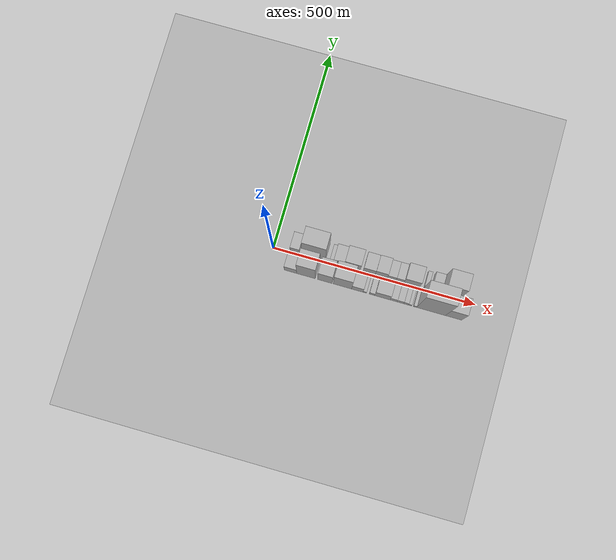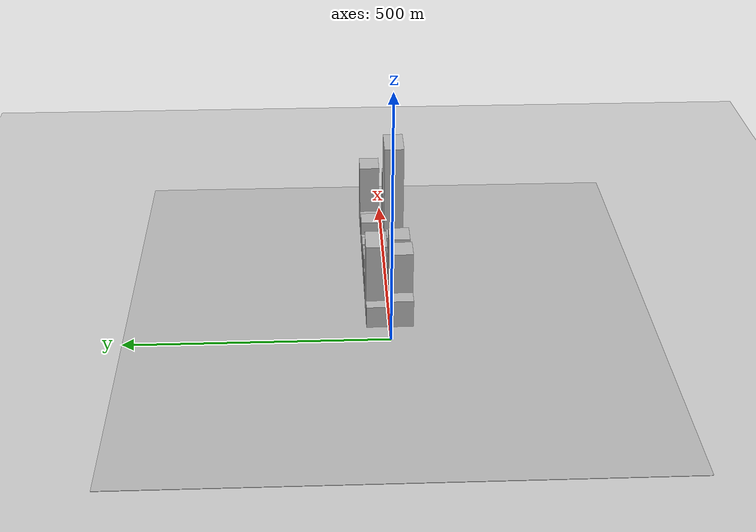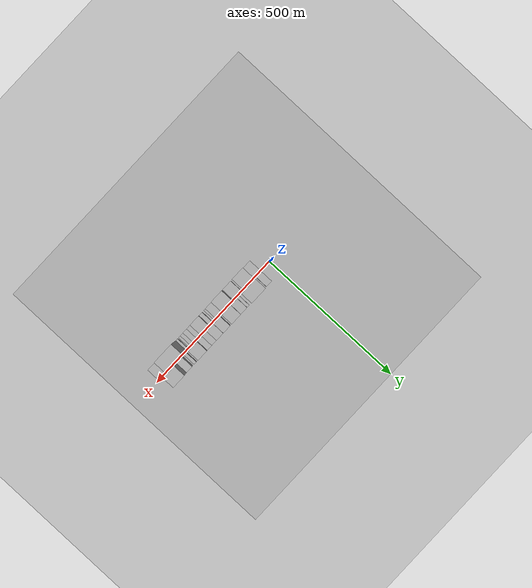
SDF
<?xml version="1.0" encoding="utf-8"?>

<sdf version="1.6">

   <world name="default">

      <gui fullscreen="0">

         <camera name="user_camera">

            <pose>-15 0 4.57585 0 0 0</pose>

            <view_controller>orbit</view_controller>

         </camera>

      </gui>

      <scene>

         <sky>

           <clouds>

             <speed>12</speed>

           </clouds>

         </sky>

         <ambient>0.4 0.4 0.4 1</ambient>

         <background>0.7 0.7 0.7 1</background>

         <shadows>1</shadows>

      </scene>

      <gravity>0 0 -9.8066</gravity>

      <magnetic_field>6e-06 2.3e-05 -4.2e-05</magnetic_field>

      <physics default="0" name="default_physics" type="ode">

         <ode>

            <solver>

               <type>quick</type>

               <iters>10</iters>

               <sor>1.0</sor>

               <use_dynamic_moi_rescaling>0</use_dynamic_moi_rescaling>

            </solver>

            <constraints>

               <cfm>0</cfm>

               <erp>0.2</erp>

               <contact_max_correcting_vel>100</contact_max_correcting_vel>

               <contact_surface_layer>0.001</contact_surface_layer>

            </constraints>

         </ode>

         <max_step_size>0.004</max_step_size>

         <real_time_factor>1</real_time_factor>

         <real_time_update_rate>250</real_time_update_rate>

      </physics>

      <light name="sun" type="directional">

         <cast_shadows>1</cast_shadows>

         <pose>0 0 10 0 0 0</pose>

         <diffuse>0.8 0.8 0.8 1</diffuse>

         <specular>0.2 0.2 0.2 1</specular>

         <attenuation>

            <range>1000</range>

            <constant>0.9</constant>

            <linear>0.01</linear>

            <quadratic>0.001</quadratic>

         </attenuation>

         <direction>-0.5 0.1 -0.9</direction>

      </light>

      <include>

         <name>ground_plane_1</name>

         <uri>model://HANNAS_ground_plane</uri>

         <pose>0 0 0  0 0 0</pose>

      </include>

      <include>

         <name>ground_plane_2</name>

         <uri>model://HANNAS_ground_plane</uri>

         <pose>100 0 0  0 0 0</pose>

      </include>

      <model name="building_1">

         <static>1</static>

         <pose frame="">51.5358 24.5000 0 0.000000 0.000000 1.570796</pose>

         <link name="link">

            <pose frame="">0 0 22.50 0 0 0</pose>

            <collision name="collision">

               <geometry>

                  <box>

                     <size>40.0000 23.0716 45.0000</size>

                  </box>

               </geometry>

               <max_contacts>10</max_contacts>

               <surface>

                  <contact>

                     <ode/>

                  </contact>

                  <bounce/>

                  <friction>

                     <torsional>

                        <ode/>

                     </torsional>

                     <ode/>

                  </friction>

               </surface>

            </collision>

            <visual name="visual">

               <cast_shadows>0</cast_shadows>

               <geometry>

                  <box>

                     <size>40.0000 23.0716 45.0000</size>

                  </box>

               </geometry>

               <material>

                  <script>

                     <uri>model://HANNAS_wall/materials/scripts</uri>

                     <uri>model://HANNAS_wall/materials/textures</uri>

                     <name>vrc/HANNAS_wall</name>

                  </script>

               </material>

            </visual>

            <self_collide>0</self_collide>

            <enable_wind>0</enable_wind>

            <kinematic>0</kinematic>

         </link>

      </model>

      <model name="building_2">

         <static>1</static>

         <pose frame="">98.5969 24.5000 0 0.000000 0.000000 1.570796</pose>

         <link name="link">

            <pose frame="">0 0 79.50 0 0 0</pose>

            <collision name="collision">

               <geometry>

                  <box>

                     <size>40.0000 59.0504 159.0000</size>

                  </box>

               </geometry>

               <max_contacts>10</max_contacts>

               <surface>

                  <contact>

                     <ode/>

                  </contact>

                  <bounce/>

                  <friction>

                     <torsional>

                        <ode/>

                     </torsional>

                     <ode/>

                  </friction>

               </surface>

            </collision>

            <visual name="visual">

               <cast_shadows>0</cast_shadows>

               <geometry>

                  <box>

                     <size>40.0000 59.0504 159.0000</size>

                  </box>

               </geometry>

               <material>

                  <script>

                     <uri>model://HANNAS_wall/materials/scripts</uri>

                     <uri>model://HANNAS_wall/materials/textures</uri>

                     <name>vrc/HANNAS_wall</name>

                  </script>

               </material>

            </visual>

            <self_collide>0</self_collide>

            <enable_wind>0</enable_wind>

            <kinematic>0</kinematic>

         </link>

      </model>

      <model name="building_3">

         <static>1</static>

         <pose frame="">142.9371 24.5000 0 0.000000 0.000000 1.570796</pose>

         <link name="link">

            <pose frame="">0 0 12.00 0 0 0</pose>

            <collision name="collision">

               <geometry>

                  <box>

                     <size>40.0000 9.6301 24.0000</size>

                  </box>

               </geometry>

               <max_contacts>10</max_contacts>

               <surface>

                  <contact>

                     <ode/>

                  </contact>

                  <bounce/>

                  <friction>

                     <torsional>

                        <ode/>

                     </torsional>

                     <ode/>

                  </friction>

               </surface>

            </collision>

            <visual name="visual">

               <cast_shadows>0</cast_shadows>

               <geometry>

                  <box>

                     <size>40.0000 9.6301 24.0000</size>

                  </box>

               </geometry>

               <material>

                  <script>

                     <uri>model://HANNAS_wall/materials/scripts</uri>

                     <uri>model://HANNAS_wall/materials/textures</uri>

                     <name>vrc/HANNAS_wall</name>

                  </script>

               </material>

            </visual>

            <self_collide>0</self_collide>

            <enable_wind>0</enable_wind>

            <kinematic>0</kinematic>

         </link>

      </model>

      <model name="building_4">

         <static>1</static>

         <pose frame="">161.3503 24.5000 0 0.000000 0.000000 1.570796</pose>

         <link name="link">

            <pose frame="">0 0 24.00 0 0 0</pose>

            <collision name="collision">

               <geometry>

                  <box>

                     <size>40.0000 27.1963 48.0000</size>

                  </box>

               </geometry>

               <max_contacts>10</max_contacts>

               <surface>

                  <contact>

                     <ode/>

                  </contact>

                  <bounce/>

                  <friction>

                     <torsional>

                        <ode/>

                     </torsional>

                     <ode/>

                  </friction>

               </surface>

            </collision>

            <visual name="visual">

               <cast_shadows>0</cast_shadows>

               <geometry>

                  <box>

                     <size>40.0000 27.1963 48.0000</size>

                  </box>

               </geometry>

               <material>

                  <script>

                     <uri>model://HANNAS_wall/materials/scripts</uri>

                     <uri>model://HANNAS_wall/materials/textures</uri>

                     <name>vrc/HANNAS_wall</name>

                  </script>

               </material>

            </visual>

            <self_collide>0</self_collide>

            <enable_wind>0</enable_wind>

            <kinematic>0</kinematic>

         </link>

      </model>

      <model name="building_5">

         <static>1</static>

         <pose frame="">194.6820 24.5000 0 0.000000 0.000000 1.570796</pose>

         <link name="link">

            <pose frame="">0 0 34.50 0 0 0</pose>

            <collision name="collision">

               <geometry>

                  <box>

                     <size>40.0000 39.4672 69.0000</size>

                  </box>

               </geometry>

               <max_contacts>10</max_contacts>

               <surface>

                  <contact>

                     <ode/>

                  </contact>

                  <bounce/>

                  <friction>

                     <torsional>

                        <ode/>

                     </torsional>

                     <ode/>

                  </friction>

               </surface>

            </collision>

            <visual name="visual">

               <cast_shadows>0</cast_shadows>

               <geometry>

                  <box>

                     <size>40.0000 39.4672 69.0000</size>

                  </box>

               </geometry>

               <material>

                  <script>

                     <uri>model://HANNAS_wall/materials/scripts</uri>

                     <uri>model://HANNAS_wall/materials/textures</uri>

                     <name>vrc/HANNAS_wall</name>

                  </script>

               </material>

            </visual>

            <self_collide>0</self_collide>

            <enable_wind>0</enable_wind>

            <kinematic>0</kinematic>

         </link>

      </model>

      <model name="building_6">

         <static>1</static>

         <pose frame="">236.3501 24.5000 0 0.000000 0.000000 1.570796</pose>

         <link name="link">

            <pose frame="">0 0 27.00 0 0 0</pose>

            <collision name="collision">

               <geometry>

                  <box>

                     <size>40.0000 29.8691 54.0000</size>

                  </box>

               </geometry>

               <max_contacts>10</max_contacts>

               <surface>

                  <contact>

                     <ode/>

                  </contact>

                  <bounce/>

                  <friction>

                     <torsional>

                        <ode/>

                     </torsional>

                     <ode/>

                  </friction>

               </surface>

            </collision>

            <visual name="visual">

               <cast_shadows>0</cast_shadows>

               <geometry>

                  <box>

                     <size>40.0000 29.8691 54.0000</size>

                  </box>

               </geometry>

               <material>

                  <script>

                     <uri>model://HANNAS_wall/materials/scripts</uri>

                     <uri>model://HANNAS_wall/materials/textures</uri>

                     <name>vrc/HANNAS_wall</name>

                  </script>

               </material>

            </visual>

            <self_collide>0</self_collide>

            <enable_wind>0</enable_wind>

            <kinematic>0</kinematic>

         </link>

      </model>

      <model name="building_7">

         <static>1</static>

         <pose frame="">266.1122 24.5000 0 0.000000 0.000000 1.570796</pose>

         <link name="link">

            <pose frame="">0 0 28.50 0 0 0</pose>

            <collision name="collision">

               <geometry>

                  <box>

                     <size>40.0000 29.6551 57.0000</size>

                  </box>

               </geometry>

               <max_contacts>10</max_contacts>

               <surface>

                  <contact>

                     <ode/>

                  </contact>

                  <bounce/>

                  <friction>

                     <torsional>

                        <ode/>

                     </torsional>

                     <ode/>

                  </friction>

               </surface>

            </collision>

            <visual name="visual">

               <cast_shadows>0</cast_shadows>

               <geometry>

                  <box>

                     <size>40.0000 29.6551 57.0000</size>

                  </box>

               </geometry>

               <material>

                  <script>

                     <uri>model://HANNAS_wall/materials/scripts</uri>

                     <uri>model://HANNAS_wall/materials/textures</uri>

                     <name>vrc/HANNAS_wall</name>

                  </script>

               </material>

            </visual>

            <self_collide>0</self_collide>

            <enable_wind>0</enable_wind>

            <kinematic>0</kinematic>

         </link>

      </model>

      <model name="building_8">

         <static>1</static>

         <pose frame="">291.7411 24.5000 0 0.000000 0.000000 1.570796</pose>

         <link name="link">

            <pose frame="">0 0 19.50 0 0 0</pose>

            <collision name="collision">

               <geometry>

                  <box>

                     <size>40.0000 21.6028 39.0000</size>

                  </box>

               </geometry>

               <max_contacts>10</max_contacts>

               <surface>

                  <contact>

                     <ode/>

                  </contact>

                  <bounce/>

                  <friction>

                     <torsional>

                        <ode/>

                     </torsional>

                     <ode/>

                  </friction>

               </surface>

            </collision>

            <visual name="visual">

               <cast_shadows>0</cast_shadows>

               <geometry>

                  <box>

                     <size>40.0000 21.6028 39.0000</size>

                  </box>

               </geometry>

               <material>

                  <script>

                     <uri>model://HANNAS_wall/materials/scripts</uri>

                     <uri>model://HANNAS_wall/materials/textures</uri>

                     <name>vrc/HANNAS_wall</name>

                  </script>

               </material>

            </visual>

            <self_collide>0</self_collide>

            <enable_wind>0</enable_wind>

            <kinematic>0</kinematic>

         </link>

      </model>

      <model name="building_9">

         <static>1</static>

         <pose frame="">312.2978 24.5000 0 0.000000 0.000000 1.570796</pose>

         <link name="link">

            <pose frame="">0 0 19.50 0 0 0</pose>

            <collision name="collision">

               <geometry>

                  <box>

                     <size>40.0000 19.5107 39.0000</size>

                  </box>

               </geometry>

               <max_contacts>10</max_contacts>

               <surface>

                  <contact>

                     <ode/>

                  </contact>

                  <bounce/>

                  <friction>

                     <torsional>

                        <ode/>

                     </torsional>

                     <ode/>

                  </friction>

               </surface>

            </collision>

            <visual name="visual">

               <cast_shadows>0</cast_shadows>

               <geometry>

                  <box>

                     <size>40.0000 19.5107 39.0000</size>

                  </box>

               </geometry>

               <material>

                  <script>

                     <uri>model://HANNAS_wall/materials/scripts</uri>

                     <uri>model://HANNAS_wall/materials/textures</uri>

                     <name>vrc/HANNAS_wall</name>

                  </script>

               </material>

            </visual>

            <self_collide>0</self_collide>

            <enable_wind>0</enable_wind>

            <kinematic>0</kinematic>

         </link>

      </model>

      <model name="building_10">

         <static>1</static>

         <pose frame="">341.4970 24.5000 0 0.000000 0.000000 1.570796</pose>

         <link name="link">

            <pose frame="">0 0 33.00 0 0 0</pose>

            <collision name="collision">

               <geometry>

                  <box>

                     <size>40.0000 38.8877 66.0000</size>

                  </box>

               </geometry>

               <max_contacts>10</max_contacts>

               <surface>

                  <contact>

                     <ode/>

                  </contact>

                  <bounce/>

                  <friction>

                     <torsional>

                        <ode/>

                     </torsional>

                     <ode/>

                  </friction>

               </surface>

            </collision>

            <visual name="visual">

               <cast_shadows>0</cast_shadows>

               <geometry>

                  <box>

                     <size>40.0000 38.8877 66.0000</size>

                  </box>

               </geometry>

               <material>

                  <script>

                     <uri>model://HANNAS_wall/materials/scripts</uri>

                     <uri>model://HANNAS_wall/materials/textures</uri>

                     <name>vrc/HANNAS_wall</name>

                  </script>

               </material>

            </visual>

            <self_collide>0</self_collide>

            <enable_wind>0</enable_wind>

            <kinematic>0</kinematic>

         </link>

      </model>

      <model name="building_11">

         <static>1</static>

         <pose frame="">376.0134 24.5000 0 0.000000 0.000000 1.570796</pose>

         <link name="link">

            <pose frame="">0 0 12.00 0 0 0</pose>

            <collision name="collision">

               <geometry>

                  <box>

                     <size>40.0000 10.1450 24.0000</size>

                  </box>

               </geometry>

               <max_contacts>10</max_contacts>

               <surface>

                  <contact>

                     <ode/>

                  </contact>

                  <bounce/>

                  <friction>

                     <torsional>

                        <ode/>

                     </torsional>

                     <ode/>

                  </friction>

               </surface>

            </collision>

            <visual name="visual">

               <cast_shadows>0</cast_shadows>

               <geometry>

                  <box>

                     <size>40.0000 10.1450 24.0000</size>

                  </box>

               </geometry>

               <material>

                  <script>

                     <uri>model://HANNAS_wall/materials/scripts</uri>

                     <uri>model://HANNAS_wall/materials/textures</uri>

                     <name>vrc/HANNAS_wall</name>

                  </script>

               </material>

            </visual>

            <self_collide>0</self_collide>

            <enable_wind>0</enable_wind>

            <kinematic>0</kinematic>

         </link>

      </model>

      <model name="building_12">

         <static>1</static>

         <pose frame="">400.3175 24.5000 0 0.000000 0.000000 1.570796</pose>

         <link name="link">

            <pose frame="">0 0 21.00 0 0 0</pose>

            <collision name="collision">

               <geometry>

                  <box>

                     <size>40.0000 24.4632 42.0000</size>

                  </box>

               </geometry>

               <max_contacts>10</max_contacts>

               <surface>

                  <contact>

                     <ode/>

                  </contact>

                  <bounce/>

                  <friction>

                     <torsional>

                        <ode/>

                     </torsional>

                     <ode/>

                  </friction>

               </surface>

            </collision>

            <visual name="visual">

               <cast_shadows>0</cast_shadows>

               <geometry>

                  <box>

                     <size>40.0000 24.4632 42.0000</size>

                  </box>

               </geometry>

               <material>

                  <script>

                     <uri>model://HANNAS_wall/materials/scripts</uri>

                     <uri>model://HANNAS_wall/materials/textures</uri>

                     <name>vrc/HANNAS_wall</name>

                  </script>

               </material>

            </visual>

            <self_collide>0</self_collide>

            <enable_wind>0</enable_wind>

            <kinematic>0</kinematic>

         </link>

      </model>

      <model name="building_13">

         <static>1</static>

         <pose frame="">436.4286 24.5000 0 0.000000 0.000000 1.570796</pose>

         <link name="link">

            <pose frame="">0 0 72.00 0 0 0</pose>

            <collision name="collision">

               <geometry>

                  <box>

                     <size>40.0000 47.7590 144.0000</size>

                  </box>

               </geometry>

               <max_contacts>10</max_contacts>

               <surface>

                  <contact>

                     <ode/>

                  </contact>

                  <bounce/>

                  <friction>

                     <torsional>

                        <ode/>

                     </torsional>

                     <ode/>

                  </friction>

               </surface>

            </collision>

            <visual name="visual">

               <cast_shadows>0</cast_shadows>

               <geometry>

                  <box>

                     <size>40.0000 47.7590 144.0000</size>

                  </box>

               </geometry>

               <material>

                  <script>

                     <uri>model://HANNAS_wall/materials/scripts</uri>

                     <uri>model://HANNAS_wall/materials/textures</uri>

                     <name>vrc/HANNAS_wall</name>

                  </script>

               </material>

            </visual>

            <self_collide>0</self_collide>

            <enable_wind>0</enable_wind>

            <kinematic>0</kinematic>

         </link>

      </model>

      <model name="building_14">

         <static>1</static>

         <pose frame="">55.2883 -24.5000 0 0.000000 0.000000 1.570796</pose>

         <link name="link">

            <pose frame="">0 0 28.50 0 0 0</pose>

            <collision name="collision">

               <geometry>

                  <box>

                     <size>40.0000 30.5766 57.0000</size>

                  </box>

               </geometry>

               <max_contacts>10</max_contacts>

               <surface>

                  <contact>

                     <ode/>

                  </contact>

                  <bounce/>

                  <friction>

                     <torsional>

                        <ode/>

                     </torsional>

                     <ode/>

                  </friction>

               </surface>

            </collision>

            <visual name="visual">

               <cast_shadows>0</cast_shadows>

               <geometry>

                  <box>

                     <size>40.0000 30.5766 57.0000</size>

                  </box>

               </geometry>

               <material>

                  <script>

                     <uri>model://HANNAS_wall/materials/scripts</uri>

                     <uri>model://HANNAS_wall/materials/textures</uri>

                     <name>vrc/HANNAS_wall</name>

                  </script>

               </material>

            </visual>

            <self_collide>0</self_collide>

            <enable_wind>0</enable_wind>

            <kinematic>0</kinematic>

         </link>

      </model>

      <model name="building_15">

         <static>1</static>

         <pose frame="">93.5635 -24.5000 0 0.000000 0.000000 1.570796</pose>

         <link name="link">

            <pose frame="">0 0 70.50 0 0 0</pose>

            <collision name="collision">

               <geometry>

                  <box>

                     <size>40.0000 45.9738 141.0000</size>

                  </box>

               </geometry>

               <max_contacts>10</max_contacts>

               <surface>

                  <contact>

                     <ode/>

                  </contact>

                  <bounce/>

                  <friction>

                     <torsional>

                        <ode/>

                     </torsional>

                     <ode/>

                  </friction>

               </surface>

            </collision>

            <visual name="visual">

               <cast_shadows>0</cast_shadows>

               <geometry>

                  <box>

                     <size>40.0000 45.9738 141.0000</size>

                  </box>

               </geometry>

               <material>

                  <script>

                     <uri>model://HANNAS_wall/materials/scripts</uri>

                     <uri>model://HANNAS_wall/materials/textures</uri>

                     <name>vrc/HANNAS_wall</name>

                  </script>

               </material>

            </visual>

            <self_collide>0</self_collide>

            <enable_wind>0</enable_wind>

            <kinematic>0</kinematic>

         </link>

      </model>

      <model name="building_16">

         <static>1</static>

         <pose frame="">140.3128 -24.5000 0 0.000000 0.000000 1.570796</pose>

         <link name="link">

            <pose frame="">0 0 52.50 0 0 0</pose>

            <collision name="collision">

               <geometry>

                  <box>

                     <size>40.0000 35.5249 105.0000</size>

                  </box>

               </geometry>

               <max_contacts>10</max_contacts>

               <surface>

                  <contact>

                     <ode/>

                  </contact>

                  <bounce/>

                  <friction>

                     <torsional>

                        <ode/>

                     </torsional>

                     <ode/>

                  </friction>

               </surface>

            </collision>

            <visual name="visual">

               <cast_shadows>0</cast_shadows>

               <geometry>

                  <box>

                     <size>40.0000 35.5249 105.0000</size>

                  </box>

               </geometry>

               <material>

                  <script>

                     <uri>model://HANNAS_wall/materials/scripts</uri>

                     <uri>model://HANNAS_wall/materials/textures</uri>

                     <name>vrc/HANNAS_wall</name>

                  </script>

               </material>

            </visual>

            <self_collide>0</self_collide>

            <enable_wind>0</enable_wind>

            <kinematic>0</kinematic>

         </link>

      </model>

      <model name="building_17">

         <static>1</static>

         <pose frame="">183.7733 -24.5000 0 0.000000 0.000000 1.570796</pose>

         <link name="link">

            <pose frame="">0 0 60.00 0 0 0</pose>

            <collision name="collision">

               <geometry>

                  <box>

                     <size>40.0000 45.3960 120.0000</size>

                  </box>

               </geometry>

               <max_contacts>10</max_contacts>

               <surface>

                  <contact>

                     <ode/>

                  </contact>

                  <bounce/>

                  <friction>

                     <torsional>

                        <ode/>

                     </torsional>

                     <ode/>

                  </friction>

               </surface>

            </collision>

            <visual name="visual">

               <cast_shadows>0</cast_shadows>

               <geometry>

                  <box>

                     <size>40.0000 45.3960 120.0000</size>

                  </box>

               </geometry>

               <material>

                  <script>

                     <uri>model://HANNAS_wall/materials/scripts</uri>

                     <uri>model://HANNAS_wall/materials/textures</uri>

                     <name>vrc/HANNAS_wall</name>

                  </script>

               </material>

            </visual>

            <self_collide>0</self_collide>

            <enable_wind>0</enable_wind>

            <kinematic>0</kinematic>

         </link>

      </model>

      <model name="building_18">

         <static>1</static>

         <pose frame="">220.6439 -24.5000 0 0.000000 0.000000 1.570796</pose>

         <link name="link">

            <pose frame="">0 0 27.00 0 0 0</pose>

            <collision name="collision">

               <geometry>

                  <box>

                     <size>40.0000 28.3452 54.0000</size>

                  </box>

               </geometry>

               <max_contacts>10</max_contacts>

               <surface>

                  <contact>

                     <ode/>

                  </contact>

                  <bounce/>

                  <friction>

                     <torsional>

                        <ode/>

                     </torsional>

                     <ode/>

                  </friction>

               </surface>

            </collision>

            <visual name="visual">

               <cast_shadows>0</cast_shadows>

               <geometry>

                  <box>

                     <size>40.0000 28.3452 54.0000</size>

                  </box>

               </geometry>

               <material>

                  <script>

                     <uri>model://HANNAS_wall/materials/scripts</uri>

                     <uri>model://HANNAS_wall/materials/textures</uri>

                     <name>vrc/HANNAS_wall</name>

                  </script>

               </material>

            </visual>

            <self_collide>0</self_collide>

            <enable_wind>0</enable_wind>

            <kinematic>0</kinematic>

         </link>

      </model>

      <model name="building_19">

         <static>1</static>

         <pose frame="">238.9677 -24.5000 0 0.000000 0.000000 1.570796</pose>

         <link name="link">

            <pose frame="">0 0 9.00 0 0 0</pose>

            <collision name="collision">

               <geometry>

                  <box>

                     <size>40.0000 8.3023 18.0000</size>

                  </box>

               </geometry>

               <max_contacts>10</max_contacts>

               <surface>

                  <contact>

                     <ode/>

                  </contact>

                  <bounce/>

                  <friction>

                     <torsional>

                        <ode/>

                     </torsional>

                     <ode/>

                  </friction>

               </surface>

            </collision>

            <visual name="visual">

               <cast_shadows>0</cast_shadows>

               <geometry>

                  <box>

                     <size>40.0000 8.3023 18.0000</size>

                  </box>

               </geometry>

               <material>

                  <script>

                     <uri>model://HANNAS_wall/materials/scripts</uri>

                     <uri>model://HANNAS_wall/materials/textures</uri>

                     <name>vrc/HANNAS_wall</name>

                  </script>

               </material>

            </visual>

            <self_collide>0</self_collide>

            <enable_wind>0</enable_wind>

            <kinematic>0</kinematic>

         </link>

      </model>

      <model name="building_20">

         <static>1</static>

         <pose frame="">256.8663 -24.5000 0 0.000000 0.000000 1.570796</pose>

         <link name="link">

            <pose frame="">0 0 13.50 0 0 0</pose>

            <collision name="collision">

               <geometry>

                  <box>

                     <size>40.0000 13.4949 27.0000</size>

                  </box>

               </geometry>

               <max_contacts>10</max_contacts>

               <surface>

                  <contact>

                     <ode/>

                  </contact>

                  <bounce/>

                  <friction>

                     <torsional>

                        <ode/>

                     </torsional>

                     <ode/>

                  </friction>

               </surface>

            </collision>

            <visual name="visual">

               <cast_shadows>0</cast_shadows>

               <geometry>

                  <box>

                     <size>40.0000 13.4949 27.0000</size>

                  </box>

               </geometry>

               <material>

                  <script>

                     <uri>model://HANNAS_wall/materials/scripts</uri>

                     <uri>model://HANNAS_wall/materials/textures</uri>

                     <name>vrc/HANNAS_wall</name>

                  </script>

               </material>

            </visual>

            <self_collide>0</self_collide>

            <enable_wind>0</enable_wind>

            <kinematic>0</kinematic>

         </link>

      </model>

      <model name="building_21">

         <static>1</static>

         <pose frame="">282.2674 -24.5000 0 0.000000 0.000000 1.570796</pose>

         <link name="link">

            <pose frame="">0 0 31.50 0 0 0</pose>

            <collision name="collision">

               <geometry>

                  <box>

                     <size>40.0000 37.3071 63.0000</size>

                  </box>

               </geometry>

               <max_contacts>10</max_contacts>

               <surface>

                  <contact>

                     <ode/>

                  </contact>

                  <bounce/>

                  <friction>

                     <torsional>

                        <ode/>

                     </torsional>

                     <ode/>

                  </friction>

               </surface>

            </collision>

            <visual name="visual">

               <cast_shadows>0</cast_shadows>

               <geometry>

                  <box>

                     <size>40.0000 37.3071 63.0000</size>

                  </box>

               </geometry>

               <material>

                  <script>

                     <uri>model://HANNAS_wall/materials/scripts</uri>

                     <uri>model://HANNAS_wall/materials/textures</uri>

                     <name>vrc/HANNAS_wall</name>

                  </script>

               </material>

            </visual>

            <self_collide>0</self_collide>

            <enable_wind>0</enable_wind>

            <kinematic>0</kinematic>

         </link>

      </model>

      <model name="building_22">

         <static>1</static>

         <pose frame="">309.4925 -24.5000 0 0.000000 0.000000 1.570796</pose>

         <link name="link">

            <pose frame="">0 0 16.50 0 0 0</pose>

            <collision name="collision">

               <geometry>

                  <box>

                     <size>40.0000 17.1432 33.0000</size>

                  </box>

               </geometry>

               <max_contacts>10</max_contacts>

               <surface>

                  <contact>

                     <ode/>

                  </contact>

                  <bounce/>

                  <friction>

                     <torsional>

                        <ode/>

                     </torsional>

                     <ode/>

                  </friction>

               </surface>

            </collision>

            <visual name="visual">

               <cast_shadows>0</cast_shadows>

               <geometry>

                  <box>

                     <size>40.0000 17.1432 33.0000</size>

                  </box>

               </geometry>

               <material>

                  <script>

                     <uri>model://HANNAS_wall/materials/scripts</uri>

                     <uri>model://HANNAS_wall/materials/textures</uri>

                     <name>vrc/HANNAS_wall</name>

                  </script>

               </material>

            </visual>

            <self_collide>0</self_collide>

            <enable_wind>0</enable_wind>

            <kinematic>0</kinematic>

         </link>

      </model>

      <model name="building_23">

         <static>1</static>

         <pose frame="">326.2330 -24.5000 0 0.000000 0.000000 1.570796</pose>

         <link name="link">

            <pose frame="">0 0 15.00 0 0 0</pose>

            <collision name="collision">

               <geometry>

                  <box>

                     <size>40.0000 16.3376 30.0000</size>

                  </box>

               </geometry>

               <max_contacts>10</max_contacts>

               <surface>

                  <contact>

                     <ode/>

                  </contact>

                  <bounce/>

                  <friction>

                     <torsional>

                        <ode/>

                     </torsional>

                     <ode/>

                  </friction>

               </surface>

            </collision>

            <visual name="visual">

               <cast_shadows>0</cast_shadows>

               <geometry>

                  <box>

                     <size>40.0000 16.3376 30.0000</size>

                  </box>

               </geometry>

               <material>

                  <script>

                     <uri>model://HANNAS_wall/materials/scripts</uri>

                     <uri>model://HANNAS_wall/materials/textures</uri>

                     <name>vrc/HANNAS_wall</name>

                  </script>

               </material>

            </visual>

            <self_collide>0</self_collide>

            <enable_wind>0</enable_wind>

            <kinematic>0</kinematic>

         </link>

      </model>

      <model name="building_24">

         <static>1</static>

         <pose frame="">340.3530 -24.5000 0 0.000000 0.000000 1.570796</pose>

         <link name="link">

            <pose frame="">0 0 13.50 0 0 0</pose>

            <collision name="collision">

               <geometry>

                  <box>

                     <size>40.0000 11.9024 27.0000</size>

                  </box>

               </geometry>

               <max_contacts>10</max_contacts>

               <surface>

                  <contact>

                     <ode/>

                  </contact>

                  <bounce/>

                  <friction>

                     <torsional>

                        <ode/>

                     </torsional>

                     <ode/>

                  </friction>

               </surface>

            </collision>

            <visual name="visual">

               <cast_shadows>0</cast_shadows>

               <geometry>

                  <box>

                     <size>40.0000 11.9024 27.0000</size>

                  </box>

               </geometry>

               <material>

                  <script>

                     <uri>model://HANNAS_wall/materials/scripts</uri>

                     <uri>model://HANNAS_wall/materials/textures</uri>

                     <name>vrc/HANNAS_wall</name>

                  </script>

               </material>

            </visual>

            <self_collide>0</self_collide>

            <enable_wind>0</enable_wind>

            <kinematic>0</kinematic>

         </link>

      </model>

      <model name="building_25">

         <static>1</static>

         <pose frame="">350.5895 -24.5000 0 0.000000 0.000000 1.570796</pose>

         <link name="link">

            <pose frame="">0 0 9.00 0 0 0</pose>

            <collision name="collision">

               <geometry>

                  <box>

                     <size>40.0000 8.5706 18.0000</size>

                  </box>

               </geometry>

               <max_contacts>10</max_contacts>

               <surface>

                  <contact>

                     <ode/>

                  </contact>

                  <bounce/>

                  <friction>

                     <torsional>

                        <ode/>

                     </torsional>

                     <ode/>

                  </friction>

               </surface>

            </collision>

            <visual name="visual">

               <cast_shadows>0</cast_shadows>

               <geometry>

                  <box>

                     <size>40.0000 8.5706 18.0000</size>

                  </box>

               </geometry>

               <material>

                  <script>

                     <uri>model://HANNAS_wall/materials/scripts</uri>

                     <uri>model://HANNAS_wall/materials/textures</uri>

                     <name>vrc/HANNAS_wall</name>

                  </script>

               </material>

            </visual>

            <self_collide>0</self_collide>

            <enable_wind>0</enable_wind>

            <kinematic>0</kinematic>

         </link>

      </model>

      <model name="building_26">

         <static>1</static>

         <pose frame="">362.8342 -24.5000 0 0.000000 0.000000 1.570796</pose>

         <link name="link">

            <pose frame="">0 0 9.00 0 0 0</pose>

            <collision name="collision">

               <geometry>

                  <box>

                     <size>40.0000 7.9188 18.0000</size>

                  </box>

               </geometry>

               <max_contacts>10</max_contacts>

               <surface>

                  <contact>

                     <ode/>

                  </contact>

                  <bounce/>

                  <friction>

                     <torsional>

                        <ode/>

                     </torsional>

                     <ode/>

                  </friction>

               </surface>

            </collision>

            <visual name="visual">

               <cast_shadows>0</cast_shadows>

               <geometry>

                  <box>

                     <size>40.0000 7.9188 18.0000</size>

                  </box>

               </geometry>

               <material>

                  <script>

                     <uri>model://HANNAS_wall/materials/scripts</uri>

                     <uri>model://HANNAS_wall/materials/textures</uri>

                     <name>vrc/HANNAS_wall</name>

                  </script>

               </material>

            </visual>

            <self_collide>0</self_collide>

            <enable_wind>0</enable_wind>

            <kinematic>0</kinematic>

         </link>

      </model>

      <model name="building_27">

         <static>1</static>

         <pose frame="">402.1028 -24.5000 0 0.000000 0.000000 1.570796</pose>

         <link name="link">

            <pose frame="">0 0 105.00 0 0 0</pose>

            <collision name="collision">

               <geometry>

                  <box>

                     <size>40.0000 70.6184 210.0000</size>

                  </box>

               </geometry>

               <max_contacts>10</max_contacts>

               <surface>

                  <contact>

                     <ode/>

                  </contact>

                  <bounce/>

                  <friction>

                     <torsional>

                        <ode/>

                     </torsional>

                     <ode/>

                  </friction>

               </surface>

            </collision>

            <visual name="visual">

               <cast_shadows>0</cast_shadows>

               <geometry>

                  <box>

                     <size>40.0000 70.6184 210.0000</size>

                  </box>

               </geometry>

               <material>

                  <script>

                     <uri>model://HANNAS_wall/materials/scripts</uri>

                     <uri>model://HANNAS_wall/materials/textures</uri>

                     <name>vrc/HANNAS_wall</name>

                  </script>

               </material>

            </visual>

            <self_collide>0</self_collide>

            <enable_wind>0</enable_wind>

            <kinematic>0</kinematic>

         </link>

      </model>

      <model name="building_28">

         <static>1</static>

         <pose frame="">457.3616 -24.5000 0 0.000000 0.000000 1.570796</pose>

         <link name="link">

            <pose frame="">0 0 55.50 0 0 0</pose>

            <collision name="collision">

               <geometry>

                  <box>

                     <size>40.0000 39.8992 111.0000</size>

                  </box>

               </geometry>

               <max_contacts>10</max_contacts>

               <surface>

                  <contact>

                     <ode/>

                  </contact>

                  <bounce/>

                  <friction>

                     <torsional>

                        <ode/>

                     </torsional>

                     <ode/>

                  </friction>

               </surface>

            </collision>

            <visual name="visual">

               <cast_shadows>0</cast_shadows>

               <geometry>

                  <box>

                     <size>40.0000 39.8992 111.0000</size>

                  </box>

               </geometry>

               <material>

                  <script>

                     <uri>model://HANNAS_wall/materials/scripts</uri>

                     <uri>model://HANNAS_wall/materials/textures</uri>

                     <name>vrc/HANNAS_wall</name>

                  </script>

               </material>

            </visual>

            <self_collide>0</self_collide>

            <enable_wind>0</enable_wind>

            <kinematic>0</kinematic>

         </link>

      </model>

   </world>

</sdf>

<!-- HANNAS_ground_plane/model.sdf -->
<sdf version="1.4">
<model name="HANNAS_ground_plane">
  <static>true</static>
    <link name="link">
      <collision name="collision">
        <geometry>
          <plane>
            <normal>0 0 1</normal>
            <size>1000 1000</size>
          </plane>
        </geometry>
        <surface>
          <friction>
            <ode>
              <mu>100</mu>
              <mu2>50</mu2>
            </ode>
          </friction>
        </surface>
      </collision>
      <visual name="visual">
        <cast_shadows>false</cast_shadows>
        <geometry>
          <plane>
            <normal>0 0 1</normal>
            <size>1000 1000</size>
          </plane>
        </geometry>
        <material>
          <script>
            <uri>model://HANNAS_ground_plane/materials/scripts/HANNAS_ground_plane.material</uri>
	    <uri>model://HANNAS_ground_plane/materials/textures</uri>
            <name>HANNASGroundPlane/Image</name>
          </script>
        </material>
      </visual>
    </link>
  </model>
</sdf>
